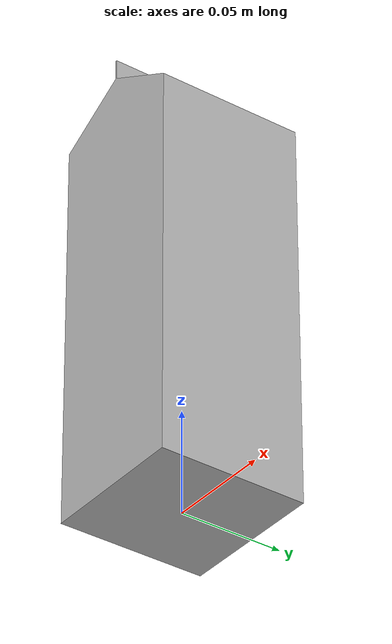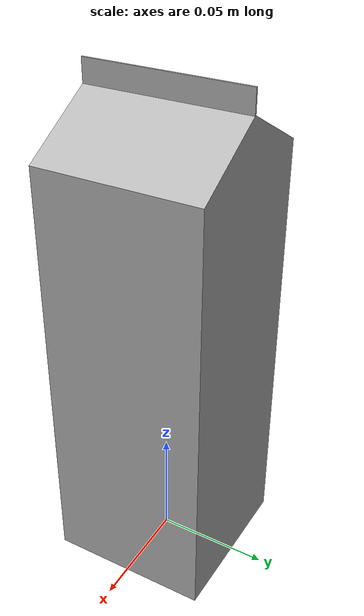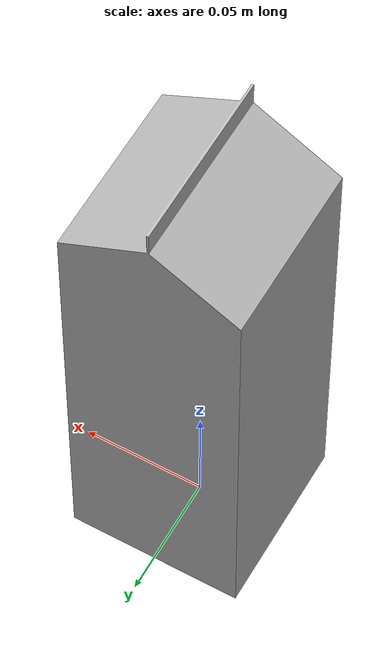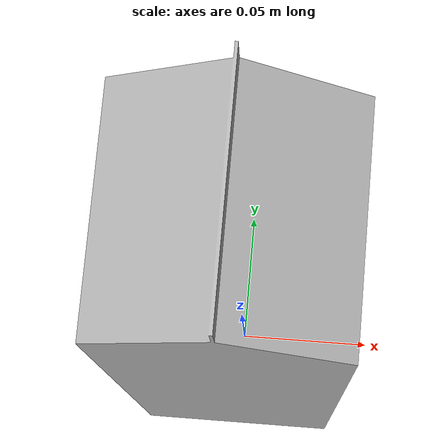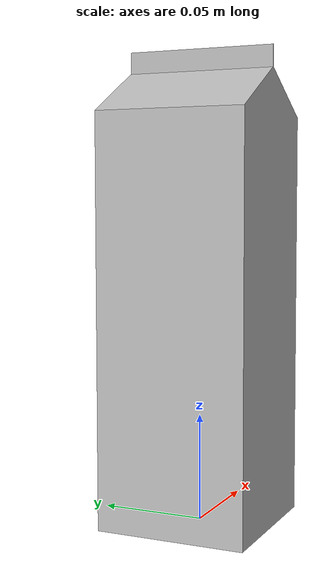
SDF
<?xml version='1.0'?>
<sdf version='1.7'>
  <model name='milk'>
    <link name='link_0'>
      <inertial>
        <mass>1.011</mass>
        <inertia>
          <ixx>0.0038363679687999992</ixx>
          <ixy>2e-13</ixy>
          <ixz>6.1e-12</ixz>
          <iyy>0.0038255585937999994</iyy>
          <iyz>-9.417377999999999e-07</iyz>
          <izz>0.0008372243164</izz>
        </inertia>
        <pose>0 0 0.10188 0 -0 0</pose>
      </inertial>
      <pose>0 0 0 0 -0 0</pose>
      <gravity>1</gravity>
      <self_collide>0</self_collide>
      <kinematic>0</kinematic>
      <enable_wind>0</enable_wind>
      <visual name='visual'>
        <pose>0 0 0 0 -0 0</pose>
        <geometry>
          <mesh>
            <uri>model://milk/milk.dae</uri>
            <scale>1 1 1</scale>
          </mesh>
        </geometry>
        <transparency>0</transparency>
        <cast_shadows>0</cast_shadows>
      </visual>
      <collision name='collision'>
        <laser_retro>0</laser_retro>
        <max_contacts>10</max_contacts>
        <pose>0 0 0 0 -0 0</pose>
        <geometry>
          <mesh>
            <uri>model://milk/milk.dae</uri>
            <scale>1 1 1</scale>
          </mesh>
        </geometry>
        <surface>
          <friction>
            <ode>
              <mu>0.8</mu>
              <mu2>1</mu2>
              <fdir1>0 0 0</fdir1>
              <slip1>0</slip1>
              <slip2>0</slip2>
            </ode>
            <torsional>
              <coefficient>1</coefficient>
              <patch_radius>0</patch_radius>
              <surface_radius>0</surface_radius>
              <use_patch_radius>1</use_patch_radius>
              <ode>
                <slip>0</slip>
              </ode>
            </torsional>
          </friction>
          <bounce>
            <restitution_coefficient>0</restitution_coefficient>
            <threshold>1e+06</threshold>
          </bounce>
          <contact>
            <collide_without_contact>0</collide_without_contact>
            <collide_without_contact_bitmask>1</collide_without_contact_bitmask>
            <collide_bitmask>1</collide_bitmask>
            <ode>
              <soft_cfm>0</soft_cfm>
              <soft_erp>0.2</soft_erp>
              <kp>1e+13</kp>
              <kd>1</kd>
              <max_vel>0.01</max_vel>
              <min_depth>0</min_depth>
            </ode>
            <bullet>
              <split_impulse>1</split_impulse>
              <split_impulse_penetration_threshold>-0.01</split_impulse_penetration_threshold>
              <soft_cfm>0</soft_cfm>
              <soft_erp>0.2</soft_erp>
              <kp>1e+13</kp>
              <kd>1</kd>
            </bullet>
          </contact>
        </surface>
      </collision>
    </link>
    <static>0</static>
    <allow_auto_disable>1</allow_auto_disable>
  </model>
</sdf>
